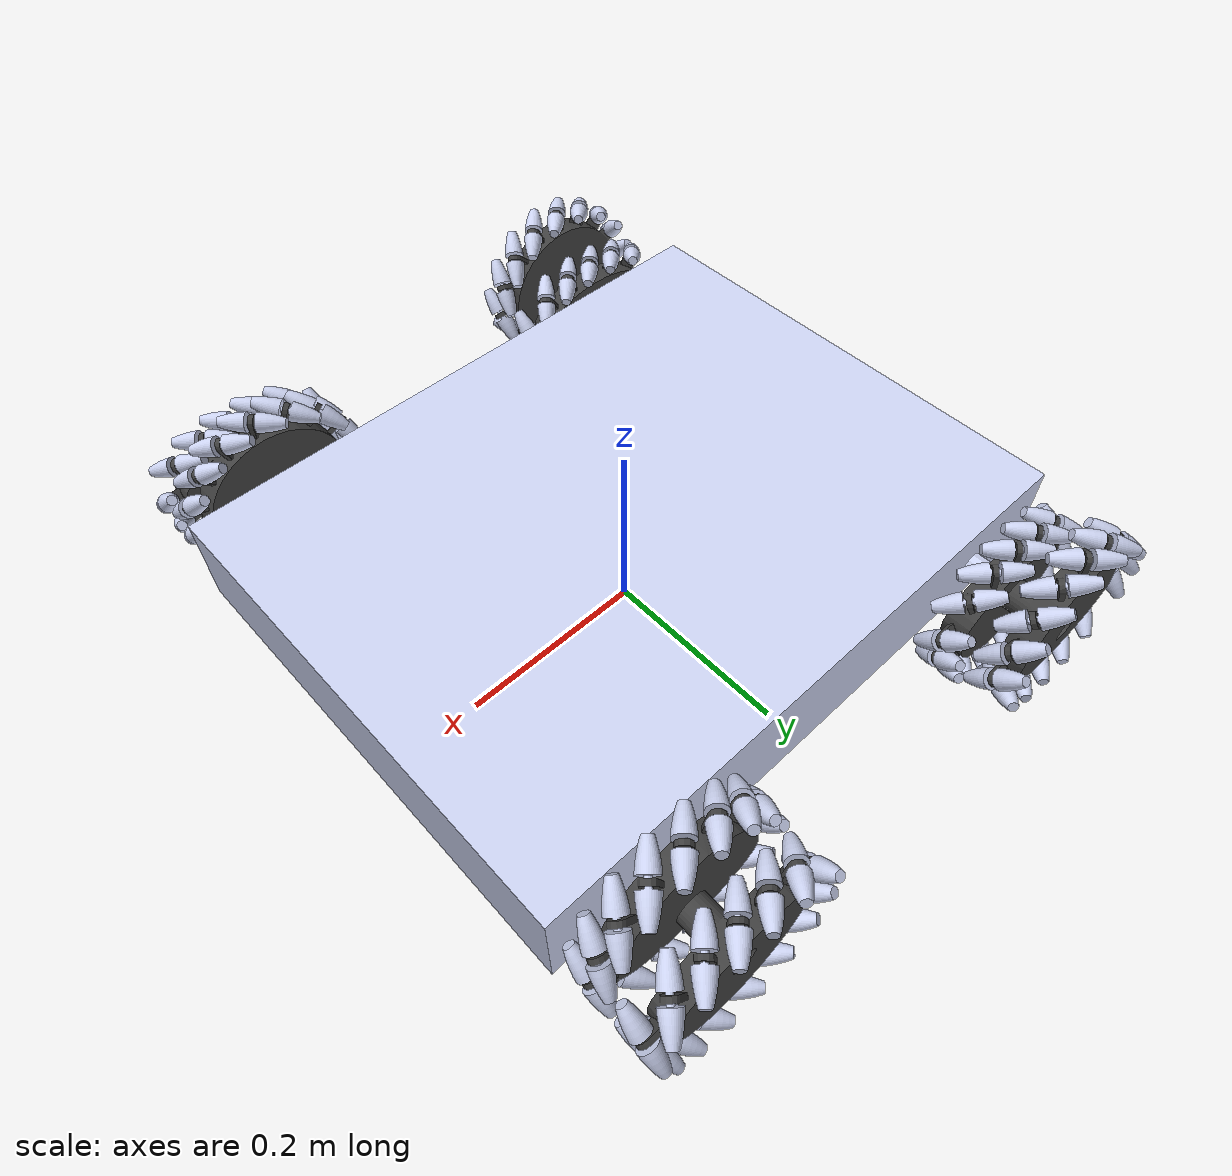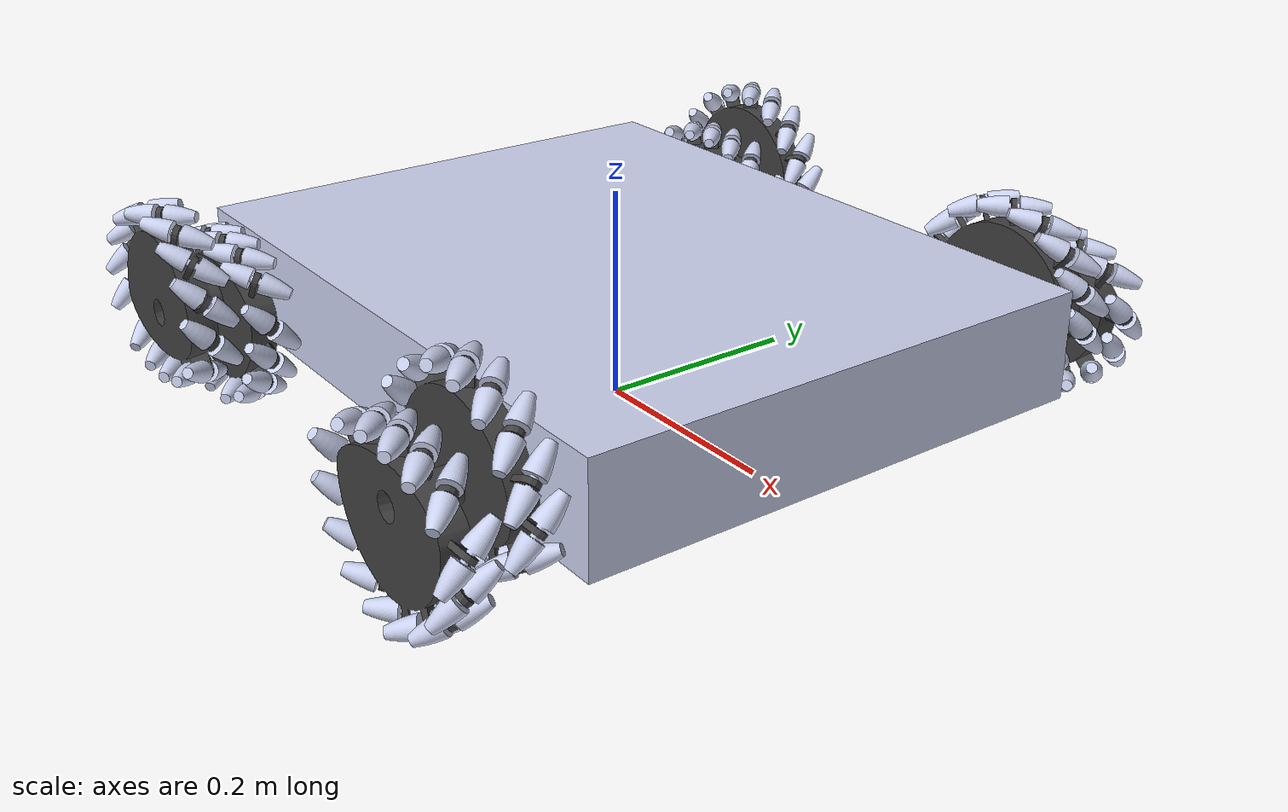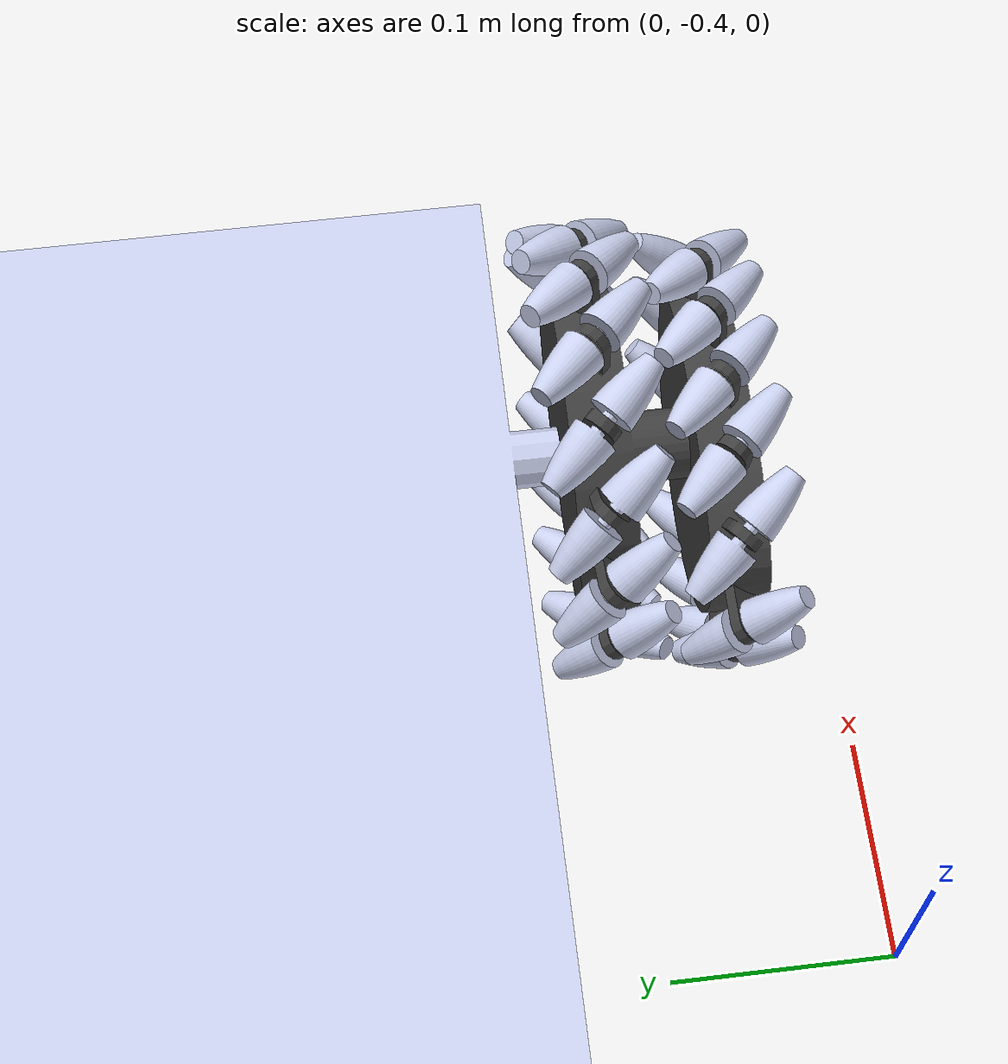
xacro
<?xml version="1.0"?>
<robot xmlns:xacro="http://ros.org/wiki/xacro" name="smdw_robot_base">

  <!-- Include the left and right SMDW wheel Xacro files -->
  <xacro:include filename="/home/imbatman/smdw_ws/src/left_smdw/urdf/left_smdw.urdf.xacro"/>
  <xacro:include filename="/home/imbatman/smdw_ws/src/right_smdw/urdf/right_smdw.urdf.xacro"/>

<!-- if you wannt to launch the robot then uncomment this following lines/ but if you launch agri_bot then dnt forget to comment this  -->

  <link name="odom">
  </link>

  <joint name="odom_to_base_footprint" type="fixed">
    <origin xyz="0 0 0" rpy="0 0 0"/>
    <parent link="odom"/>
    <child link="base_footprint"/>
  </joint>
  <!-- Fixed joint between base_footprint and base_link -->
  <joint name="base_fixed_joint" type="fixed">
    <origin xyz="0 0 0.0450" rpy="0 0 0"/>
    <parent link="base_footprint"/>
    <child link="base_link"/>
  </joint>
  <!-- Base footprint -->
  <link name="base_footprint"/>

  <!-- Base link -->
  <link name="base_link">
    <inertial>
      <origin xyz="5.48421351341662E-17 -4.87352495342906E-17 0.0508" rpy="0 0 0" />
      <mass value="25" />
      <inertia ixx="0.5656" ixy="0" ixz="0"
               iyy="0.8627" iyz="0" izz="1.3860" />
    </inertial>
    <visual>
      <origin xyz="0 0 0" rpy="0 0 0" />
      <geometry>
        <mesh filename="file:///home/imbatman/smdw_ws/src/smdw_robot_base/meshes/robot_base_link.STL" />
      </geometry>
      <material name="">
        <color rgba="0.792156862745098 0.819607843137255 0.933333333333333 1" />
      </material>
    </visual>
    <collision>
      <origin xyz="0 0 0" rpy="0 0 0" />
      <geometry>
        <mesh filename="file:///home/imbatman/smdw_ws/src/smdw_robot_base/meshes/robot_base_link.STL" />
      </geometry>
    </collision>
  </link>

  <!-- Instantiate the SMDW wheels at the correct positions -->
  <xacro:left_smdw_wheel prefix="front_left_" />
  <xacro:left_smdw_wheel prefix="rear_right_" />
  <xacro:right_smdw_wheel prefix="front_right_" />
  <xacro:right_smdw_wheel prefix="rear_left_" />

  <!-- Attach wheels to base_link -->
  <joint name="front_left_wheel_joint" type="continuous">
    <parent link="base_link" />
    <child link="front_left_base_link" />
    <origin xyz="0.2159 0.3175 0.0508" rpy="0 0 0" />
    <axis xyz="0 1 0" />
    <limit effort="100.0" velocity="10.0" />
    <dynamics friction="0.001" />
  </joint>

  <joint name="rear_left_wheel_joint" type="continuous">
    <parent link="base_link" />
    <child link="rear_left_base_link" />
    <origin xyz="-0.2159 0.3175 0.0508" rpy="0 0 0" />
    <axis xyz="0 1 0" />
    <limit effort="100.0" velocity="10.0" />
    <dynamics friction="0.001" />
  </joint>

  <joint name="front_right_wheel_joint" type="continuous">
    <parent link="base_link" />
    <child link="front_right_base_link" />
    <origin xyz="0.2159 -0.3175 0.0508" rpy="0 0 0" />
    <axis xyz="0 1 0" />
    <limit effort="100.0" velocity="10.0" />
    <dynamics friction="0.001" />
  </joint>

  <joint name="rear_right_wheel_joint" type="continuous">
    <parent link="base_link" />
    <child link="rear_right_base_link" />
    <origin xyz="-0.2159 -0.3175 0.0508" rpy="0 0 0" />
    <axis xyz="0 1 0" />
    <limit effort="100.0" velocity="10.0" />
    <dynamics friction="0.001" />
  </joint>

</robot>

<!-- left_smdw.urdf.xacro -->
<robot xmlns:xacro="http://ros.org/wiki/xacro" name="left_smdw_wheel">

  <!-- Define the left_smdw_wheel macro -->
  <xacro:macro name="left_smdw_wheel" params="prefix">
    <!-- Define properties -->
    <xacro:property name="mesh_path" value="file:///home/imbatman/smdw_ws/src/left_smdw/meshes/" />
    <xacro:property name="roller_mass" value="0.0343" />
    <xacro:property name="roller_ixx" value="0.00001147" />
    <xacro:property name="roller_iyy" value="0.000001312" />
    <xacro:property name="roller_izz" value="0.00001147" />

    <!-- Define materials -->
    <material name="${prefix}base_color">
      <color rgba="0.79216 0.81961 0.93333 1" />
    </material>
    <material name="${prefix}wheel_color">
      <color rgba="0.25098 0.25098 0.25098 1" />
    </material>

    <!-- Base link -->
    <link name="${prefix}base_link">
      <inertial>
        <origin xyz="-4.3311E-18 1.504E-12 1.7857E-18" rpy="0 0 0" />
        <mass value="1.9429" />
        <inertia ixx="0.0019245" ixy="8.1609E-21" ixz="-8.1689E-08" iyy="0.0049239" iyz="-7.5092E-20" izz="0.0032216" />
      </inertial>
      <visual>
        <origin xyz="0 0 0" rpy="0 0 0" />
        <geometry>
          <mesh filename="${mesh_path}front_left_wheel_base_link.STL" />
        </geometry>
        <material name="${prefix}wheel_color" />
      </visual>
      <collision>
        <origin xyz="0 0 0" rpy="0 0 0" />
        <geometry>
          <mesh filename="${mesh_path}front_left_wheel_base_link.STL" />
        </geometry>
      </collision>
    </link>

  <!-- Define the smdw_roller macro for individual rollers -->
  <xacro:macro name="smdw_roller" params="prefix type number mesh_path xyz rpy axis">
    <link name="${prefix}${type}_link_${number}">
      <inertial>
        <origin xyz="0 0 0" rpy="0 0 0" />
        <mass value="0.0343" />
        <inertia ixx="0.00001147" ixy="0" ixz="0" iyy="0.000001312" iyz="0" izz="0.00001147" />
      </inertial>
      <visual>
        <origin xyz="0 0 0" rpy="0 0 0" />
        <geometry>
          <mesh filename="${mesh_path}FL_${type}_link_${number}.STL" />
        </geometry>
        <material name="${prefix}base_color" />
      </visual>
      <collision>
        <origin xyz="0 0 0" rpy="0 0 0" />
        <geometry>
          <mesh filename="${mesh_path}FL_${type}_link_${number}.STL" />
        </geometry>
      </collision>
    </link>
    <joint name="${prefix}${type}_joint_${number}" type="continuous">
      <origin xyz="${xyz}" rpy="${rpy}" />
      <parent link="${prefix}base_link" />
      <child link="${prefix}${type}_link_${number}" />
      <axis xyz="${axis}" />
    </joint>

    <gazebo reference="${prefix}${type}_link_${number}">
      <material>Gazebo/DarkGrey</material>
      <surface>
        <friction>
          <ode>
            <mu1>1.0</mu1>
            <mu2>2.0</mu2>
            <fdir1>1 0 0</fdir1>
          </ode>
        </friction>
        <contact>
          <ode>
            <min_depth>0.001</min_depth>
            <max_vel>10.0</max_vel>
          </ode>
        </contact>
      </surface>
    </gazebo>
  </xacro:macro>

    <!-- Properties for RR rollers (FL_RR_link_1 to FL_RR_link_14) -->
    <xacro:property name="RR1_xyz" value="0.0000 -0.0279 0.0914" />
    <xacro:property name="RR1_rpy" value="0.0000 0.0000 -0.7854" />
    <xacro:property name="RR1_axis" value="0 -1 0" />
    <xacro:property name="RR2_xyz" value="0.0350 -0.0279 0.0845" />
    <xacro:property name="RR2_rpy" value="-0.2849 0.2740 -0.8249" />
    <xacro:property name="RR2_axis" value="0 -1 0" />
    <xacro:property name="RR3_xyz" value="0.0647 -0.0279 0.0647" />
    <xacro:property name="RR3_rpy" value="-0.6155 0.5236 -0.9553" />
    <xacro:property name="RR3_axis" value="0 -1 0" />
    <xacro:property name="RR4_xyz" value="0.0845 -0.0279 0.0350" />
    <xacro:property name="RR4_rpy" value="-1.0409 0.7119 -1.2053" />
    <xacro:property name="RR4_axis" value="0 -1 0" />
    <xacro:property name="RR5_xyz" value="0.0914 -0.0279 0.0000" />
    <xacro:property name="RR5_rpy" value="-1.5708 0.7854 -1.5708" />
    <xacro:property name="RR5_axis" value="0 -1 0" />
    <xacro:property name="RR6_xyz" value="0.0671 -0.0279 -0.0370" />
    <xacro:property name="RR6_rpy" value="-2.7309 0.3798 -2.2762" />
    <xacro:property name="RR6_axis" value="0 -1 0" />
    <xacro:property name="RR7_xyz" value="0.0320 -0.0261 -0.0502" />
    <xacro:property name="RR7_rpy" value="-2.9882 0.1516 -2.3445" />
    <xacro:property name="RR7_axis" value="0 -1 0" />
    <xacro:property name="RR8_xyz" value="0.0000 -0.0279 -0.0533" />
    <xacro:property name="RR8_rpy" value="-3.1416 0.0000 -2.3562" />
    <xacro:property name="RR8_axis" value="0 -1 0" />
    <xacro:property name="RR9_xyz" value="-0.0338 -0.0279 -0.0498" />
    <xacro:property name="RR9_rpy" value="2.9882 -0.1517 -2.3445" />
    <xacro:property name="RR9_axis" value="0 -1 0" />
    <xacro:property name="RR10_xyz" value="-0.0671 -0.0279 -0.0370" />
    <xacro:property name="RR10_rpy" value="2.7309 -0.3798 -2.2762" />
    <xacro:property name="RR10_axis" value="0 -1 0" />
    <xacro:property name="RR11_xyz" value="-0.0914 -0.0279 0.0000" />
    <xacro:property name="RR11_rpy" value="1.5708 -0.7854 -1.5708" />
    <xacro:property name="RR11_axis" value="0 -1 0" />
    <xacro:property name="RR12_xyz" value="-0.0845 -0.0279 0.0350" />
    <xacro:property name="RR12_rpy" value="1.0409 -0.7119 -1.2053" />
    <xacro:property name="RR12_axis" value="0 -1 0" />
    <xacro:property name="RR13_xyz" value="-0.0647 -0.0279 0.0647" />
    <xacro:property name="RR13_rpy" value="0.6155 -0.5236 -0.9553" />
    <xacro:property name="RR13_axis" value="0 -1 0" />
    <xacro:property name="RR14_xyz" value="-0.0350 -0.0279 0.0845" />
    <xacro:property name="RR14_rpy" value="0.2849 -0.2740 -0.8249" />
    <xacro:property name="RR14_axis" value="0 -1 0" />

    <!-- Properties for LR rollers (FL_LR_link_1 to FL_LR_link_14) -->
    <xacro:property name="LR1_xyz" value="0.0000 0.0279 0.0533" />
    <xacro:property name="LR1_rpy" value="0.0000 0.0000 -0.7854" />
    <xacro:property name="LR1_axis" value="0 -1 0" />
    <xacro:property name="LR2_xyz" value="0.0338 0.0279 0.0498" />
    <xacro:property name="LR2_rpy" value="-0.1534 0.1517 -0.7971" />
    <xacro:property name="LR2_axis" value="0 -1 0" />
    <xacro:property name="LR3_xyz" value="0.0671 0.0279 0.0370" />
    <xacro:property name="LR3_rpy" value="-0.4107 0.3798 -0.8654" />
    <xacro:property name="LR3_axis" value="0 -1 0" />
    <xacro:property name="LR4_xyz" value="0.0914 0.0279 0.0000" />
    <xacro:property name="LR4_rpy" value="-1.5708 0.7854 -1.5708" />
    <xacro:property name="LR4_axis" value="0 -1 0" />
    <xacro:property name="LR5_xyz" value="0.0845 0.0279 -0.0350" />
    <xacro:property name="LR5_rpy" value="-2.1007 0.7119 -1.9363" />
    <xacro:property name="LR5_axis" value="0 -1 0" />
    <xacro:property name="LR6_xyz" value="0.0647 0.0279 -0.0647" />
    <xacro:property name="LR6_rpy" value="-2.5261 0.5236 -2.1863" />
    <xacro:property name="LR6_axis" value="0 -1 0" />
    <xacro:property name="LR7_xyz" value="0.0350 0.0279 -0.0845" />
    <xacro:property name="LR7_rpy" value="-2.8567 0.2740 -2.3166" />
    <xacro:property name="LR7_axis" value="0 -1 0" />
    <xacro:property name="LR8_xyz" value="0.0000 0.0279 -0.0914" />
    <xacro:property name="LR8_rpy" value="3.1416 0.0000 -2.3562" />
    <xacro:property name="LR8_axis" value="0 -1 0" />
    <xacro:property name="LR9_xyz" value="-0.0350 0.0279 -0.0845" />
    <xacro:property name="LR9_rpy" value="2.8567 -0.2740 -2.3166" />
    <xacro:property name="LR9_axis" value="0 -1 0" />
    <xacro:property name="LR10_xyz" value="-0.0647 0.0279 -0.0647" />
    <xacro:property name="LR10_rpy" value="2.5261 -0.5236 -2.1863" />
    <xacro:property name="LR10_axis" value="0 -1 0" />
    <xacro:property name="LR11_xyz" value="-0.0845 0.0279 -0.0350" />
    <xacro:property name="LR11_rpy" value="2.1007 -0.7119 -1.9363" />
    <xacro:property name="LR11_axis" value="0 -1 0" />
    <xacro:property name="LR12_xyz" value="-0.0914 0.0279 0.0000" />
    <xacro:property name="LR12_rpy" value="1.5708 -0.7854 -1.5708" />
    <xacro:property name="LR12_axis" value="0 -1 0" />
    <xacro:property name="LR13_xyz" value="-0.0671 0.0279 0.0370" />
    <xacro:property name="LR13_rpy" value="0.4107 -0.3798 -0.8654" />
    <xacro:property name="LR13_axis" value="0 -1 0" />
    <xacro:property name="LR14_xyz" value="-0.0338 0.0279 0.0498" />
    <xacro:property name="LR14_rpy" value="0.1534 -0.1517 -0.7971" />
    <xacro:property name="LR14_axis" value="0 -1 0" />

    <!-- Instantiate RR rollers -->
    <xacro:smdw_roller prefix="${prefix}" type="RR" number="1" mesh_path="${mesh_path}" xyz="${RR1_xyz}" rpy="${RR1_rpy}" axis="${RR1_axis}" />
    <xacro:smdw_roller prefix="${prefix}" type="RR" number="2" mesh_path="${mesh_path}" xyz="${RR2_xyz}" rpy="${RR2_rpy}" axis="${RR2_axis}" />
    <xacro:smdw_roller prefix="${prefix}" type="RR" number="3" mesh_path="${mesh_path}" xyz="${RR3_xyz}" rpy="${RR3_rpy}" axis="${RR3_axis}" />
    <xacro:smdw_roller prefix="${prefix}" type="RR" number="4" mesh_path="${mesh_path}" xyz="${RR4_xyz}" rpy="${RR4_rpy}" axis="${RR4_axis}" />
    <xacro:smdw_roller prefix="${prefix}" type="RR" number="5" mesh_path="${mesh_path}" xyz="${RR5_xyz}" rpy="${RR5_rpy}" axis="${RR5_axis}" />
    <xacro:smdw_roller prefix="${prefix}" type="RR" number="6" mesh_path="${mesh_path}" xyz="${RR6_xyz}" rpy="${RR6_rpy}" axis="${RR6_axis}" />
    <xacro:smdw_roller prefix="${prefix}" type="RR" number="7" mesh_path="${mesh_path}" xyz="${RR7_xyz}" rpy="${RR7_rpy}" axis="${RR7_axis}" />
    <xacro:smdw_roller prefix="${prefix}" type="RR" number="8" mesh_path="${mesh_path}" xyz="${RR8_xyz}" rpy="${RR8_rpy}" axis="${RR8_axis}" />
    <xacro:smdw_roller prefix="${prefix}" type="RR" number="9" mesh_path="${mesh_path}" xyz="${RR9_xyz}" rpy="${RR9_rpy}" axis="${RR9_axis}" />
    <xacro:smdw_roller prefix="${prefix}" type="RR" number="10" mesh_path="${mesh_path}" xyz="${RR10_xyz}" rpy="${RR10_rpy}" axis="${RR10_axis}" />
    <xacro:smdw_roller prefix="${prefix}" type="RR" number="11" mesh_path="${mesh_path}" xyz="${RR11_xyz}" rpy="${RR11_rpy}" axis="${RR11_axis}" />
    <xacro:smdw_roller prefix="${prefix}" type="RR" number="12" mesh_path="${mesh_path}" xyz="${RR12_xyz}" rpy="${RR12_rpy}" axis="${RR12_axis}" />
    <xacro:smdw_roller prefix="${prefix}" type="RR" number="13" mesh_path="${mesh_path}" xyz="${RR13_xyz}" rpy="${RR13_rpy}" axis="${RR13_axis}" />
    <xacro:smdw_roller prefix="${prefix}" type="RR" number="14" mesh_path="${mesh_path}" xyz="${RR14_xyz}" rpy="${RR14_rpy}" axis="${RR14_axis}" />

    <!-- Instantiate LR rollers -->
    <xacro:smdw_roller prefix="${prefix}" type="LR" number="1" mesh_path="${mesh_path}" xyz="${LR1_xyz}" rpy="${LR1_rpy}" axis="${LR1_axis}" />
    <xacro:smdw_roller prefix="${prefix}" type="LR" number="2" mesh_path="${mesh_path}" xyz="${LR2_xyz}" rpy="${LR2_rpy}" axis="${LR2_axis}" />
    <xacro:smdw_roller prefix="${prefix}" type="LR" number="3" mesh_path="${mesh_path}" xyz="${LR3_xyz}" rpy="${LR3_rpy}" axis="${LR3_axis}" />
    <xacro:smdw_roller prefix="${prefix}" type="LR" number="4" mesh_path="${mesh_path}" xyz="${LR4_xyz}" rpy="${LR4_rpy}" axis="${LR4_axis}" />
    <xacro:smdw_roller prefix="${prefix}" type="LR" number="5" mesh_path="${mesh_path}" xyz="${LR5_xyz}" rpy="${LR5_rpy}" axis="${LR5_axis}" />
    <xacro:smdw_roller prefix="${prefix}" type="LR" number="6" mesh_path="${mesh_path}" xyz="${LR6_xyz}" rpy="${LR6_rpy}" axis="${LR6_axis}" />
    <xacro:smdw_roller prefix="${prefix}" type="LR" number="7" mesh_path="${mesh_path}" xyz="${LR7_xyz}" rpy="${LR7_rpy}" axis="${LR7_axis}" />
    <xacro:smdw_roller prefix="${prefix}" type="LR" number="8" mesh_path="${mesh_path}" xyz="${LR8_xyz}" rpy="${LR8_rpy}" axis="${LR8_axis}" />
    <xacro:smdw_roller prefix="${prefix}" type="LR" number="9" mesh_path="${mesh_path}" xyz="${LR9_xyz}" rpy="${LR9_rpy}" axis="${LR9_axis}" />
    <xacro:smdw_roller prefix="${prefix}" type="LR" number="10" mesh_path="${mesh_path}" xyz="${LR10_xyz}" rpy="${LR10_rpy}" axis="${LR10_axis}" />
    <xacro:smdw_roller prefix="${prefix}" type="LR" number="11" mesh_path="${mesh_path}" xyz="${LR11_xyz}" rpy="${LR11_rpy}" axis="${LR11_axis}" />
    <xacro:smdw_roller prefix="${prefix}" type="LR" number="12" mesh_path="${mesh_path}" xyz="${LR12_xyz}" rpy="${LR12_rpy}" axis="${LR12_axis}" />
    <xacro:smdw_roller prefix="${prefix}" type="LR" number="13" mesh_path="${mesh_path}" xyz="${LR13_xyz}" rpy="${LR13_rpy}" axis="${LR13_axis}" />
    <xacro:smdw_roller prefix="${prefix}" type="LR" number="14" mesh_path="${mesh_path}" xyz="${LR14_xyz}" rpy="${LR14_rpy}" axis="${LR14_axis}" />
  </xacro:macro>

</robot>

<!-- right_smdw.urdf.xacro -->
<robot xmlns:xacro="http://ros.org/wiki/xacro" name="right_smdw_wheel">

  <xacro:macro name="smdw_roller" params="prefix type number mesh_path xyz rpy axis">
    <link name="${prefix}${type}_link_${number}">
      <inertial>
        <origin xyz="0 0 0" rpy="0 0 0" />
        <mass value="0.0343" />
        <inertia ixx="0.00001147" ixy="0" ixz="0" iyy="0.000001312" iyz="0" izz="0.00001147" />
      </inertial>
      <visual>
        <origin xyz="0 0 0" rpy="0 0 0" />
        <geometry>
          <mesh filename="${mesh_path}FR_${type}_link_${number}.STL" />
        </geometry>
        <material name="${prefix}base_color" />
      </visual>
      <collision>
        <origin xyz="0 0 0" rpy="0 0 0" />
        <geometry>
          <mesh filename="${mesh_path}FR_${type}_link_${number}.STL" />
        </geometry>
      </collision>
    </link>
    <joint name="${prefix}${type}_joint_${number}" type="continuous">
      <origin xyz="${xyz}" rpy="${rpy}" />
      <parent link="${prefix}base_link" />
      <child link="${prefix}${type}_link_${number}" />
      <axis xyz="${axis}" />
    </joint>

    <gazebo reference="${prefix}${type}_link_${number}">
      <material>Gazebo/DarkGrey</material>
      <surface>
        <friction>
          <ode>
            <mu1>1.0</mu1>
            <mu2>2.0</mu2>
            <fdir1>1 0 0</fdir1>
          </ode>
        </friction>
        <contact>
          <ode>
            <min_depth>0.001</min_depth>
            <max_vel>10.0</max_vel>
          </ode>
        </contact>
      </surface>
    </gazebo>

  </xacro:macro>

  <!-- Define the right_smdw_wheel macro -->
  <xacro:macro name="right_smdw_wheel" params="prefix">
    <!-- Define properties -->
    <xacro:property name="mesh_path" value="file:///home/imbatman/smdw_ws/src/right_smdw/meshes/" />
    <xacro:property name="roller_mass" value="0.0343" />
    <xacro:property name="roller_ixx" value="0.00001147" />
    <xacro:property name="roller_iyy" value="0.000001312" />
    <xacro:property name="roller_izz" value="0.00001147" />

    <!-- Define materials -->
    <material name="${prefix}base_color">
      <color rgba="0.79216 0.81961 0.93333 1" />
    </material>
    <material name="${prefix}wheel_color">
      <color rgba="0.25098 0.25098 0.25098 1" />
    </material>

    <!-- Base link -->
    <link name="${prefix}base_link">
      <inertial>
        <origin xyz="-4.3311E-18 1.504E-12 1.7857E-18" rpy="0 0 0" />
        <mass value="1.9429" />
        <inertia ixx="0.0019245" ixy="8.1609E-21" ixz="-8.1689E-08" iyy="0.0049239" iyz="-7.5092E-20" izz="0.0032216" />
      </inertial>
      <visual>
        <origin xyz="0 0 0" rpy="0 0 0" />
        <geometry>
          <mesh filename="${mesh_path}front_right_wheel_base_link.STL" />
        </geometry>
        <material name="${prefix}wheel_color" />
      </visual>
      <collision>
        <origin xyz="0 0 0" rpy="0 0 0" />
        <geometry>
          <mesh filename="${mesh_path}front_right_wheel_base_link.STL" />
        </geometry>
      </collision>
    </link>

    <!-- Properties for RR rollers (FR_RR_link_1 to FR_RR_link_14) -->
    <xacro:property name="RR1_xyz" value="0.0000 -0.0279 0.0533" />
    <xacro:property name="RR1_rpy" value="0.0000 0.0000 0.7854" />
    <xacro:property name="RR1_axis" value="0 -1 0" />
    <xacro:property name="RR2_xyz" value="0.0338 -0.0279 0.0498" />
    <xacro:property name="RR2_rpy" value="0.1534 0.1516 0.7971" />
    <xacro:property name="RR2_axis" value="0 -1 0" />
    <xacro:property name="RR3_xyz" value="0.0671 -0.0279 0.0370" />
    <xacro:property name="RR3_rpy" value="0.4107 0.3798 0.8654" />
    <xacro:property name="RR3_axis" value="0 -1 0" />
    <xacro:property name="RR4_xyz" value="0.0914 -0.0279 0.0000" />
    <xacro:property name="RR4_rpy" value="1.5708 0.7854 1.5708" />
    <xacro:property name="RR4_axis" value="0 -1 0" />
    <xacro:property name="RR5_xyz" value="0.0845 -0.0279 -0.0350" />
    <xacro:property name="RR5_rpy" value="2.1007 0.7119 1.9363" />
    <xacro:property name="RR5_axis" value="0 -1 0" />
    <xacro:property name="RR6_xyz" value="0.0647 -0.0279 -0.0647" />
    <xacro:property name="RR6_rpy" value="2.5261 0.5236 2.1863" />
    <xacro:property name="RR6_axis" value="0 -1 0" />
    <xacro:property name="RR7_xyz" value="0.0350 -0.0279 -0.0845" />
    <xacro:property name="RR7_rpy" value="2.8567 0.2740 2.3166" />
    <xacro:property name="RR7_axis" value="0 -1 0" />
    <xacro:property name="RR8_xyz" value="0.0000 -0.0279 -0.0914" />
    <xacro:property name="RR8_rpy" value="3.1416 0.0000 2.3562" />
    <xacro:property name="RR8_axis" value="0 -1 0" />
    <xacro:property name="RR9_xyz" value="-0.0350 -0.0279 -0.0845" />
    <xacro:property name="RR9_rpy" value="-2.8567 -0.2740 2.3166" />
    <xacro:property name="RR9_axis" value="0 -1 0" />
    <xacro:property name="RR10_xyz" value="-0.0647 -0.0279 -0.0647" />
    <xacro:property name="RR10_rpy" value="-2.5261 -0.5236 2.1863" />
    <xacro:property name="RR10_axis" value="0 -1 0" />
    <xacro:property name="RR11_xyz" value="-0.0845 -0.0279 -0.0350" />
    <xacro:property name="RR11_rpy" value="-2.1007 -0.7119 1.9363" />
    <xacro:property name="RR11_axis" value="0 -1 0" />
    <xacro:property name="RR12_xyz" value="-0.0914 -0.0279 0.0000" />
    <xacro:property name="RR12_rpy" value="-1.5708 -0.7854 1.5708" />
    <xacro:property name="RR12_axis" value="0 -1 0" />
    <xacro:property name="RR13_xyz" value="-0.0671 -0.0279 0.0370" />
    <xacro:property name="RR13_rpy" value="-0.4107 -0.3798 0.8654" />
    <xacro:property name="RR13_axis" value="0 -1 0" />
    <xacro:property name="RR14_xyz" value="-0.0338 -0.0279 0.0498" />
    <xacro:property name="RR14_rpy" value="-0.1534 -0.1516 0.7971" />
    <xacro:property name="RR14_axis" value="0 -1 0" />

    <!-- Properties for LR rollers (FR_LR_link_1 to FR_LR_link_14) -->
    <xacro:property name="LR1_xyz" value="0.0000 0.0279 0.0914" />
    <xacro:property name="LR1_rpy" value="0.0000 0.0000 0.7854" />
    <xacro:property name="LR1_axis" value="0 -1 0" />
    <xacro:property name="LR2_xyz" value="0.0350 0.0279 0.0845" />
    <xacro:property name="LR2_rpy" value="0.2849 0.2740 0.8249" />
    <xacro:property name="LR2_axis" value="0 -1 0" />
    <xacro:property name="LR3_xyz" value="0.0647 0.0279 0.0647" />
    <xacro:property name="LR3_rpy" value="0.6155 0.5236 0.9553" />
    <xacro:property name="LR3_axis" value="0 -1 0" />
    <xacro:property name="LR4_xyz" value="0.0845 0.0279 0.0350" />
    <xacro:property name="LR4_rpy" value="1.0409 0.7119 1.2053" />
    <xacro:property name="LR4_axis" value="0 -1 0" />
    <xacro:property name="LR5_xyz" value="0.0914 0.0279 0.0000" />
    <xacro:property name="LR5_rpy" value="1.5708 0.7854 1.5708" />
    <xacro:property name="LR5_axis" value="0 -1 0" />
    <xacro:property name="LR6_xyz" value="0.0671 0.0279 -0.0370" />
    <xacro:property name="LR6_rpy" value="2.7309 0.3798 2.2762" />
    <xacro:property name="LR6_axis" value="0 -1 0" />
    <xacro:property name="LR7_xyz" value="0.0338 0.0279 -0.0498" />
    <xacro:property name="LR7_rpy" value="2.9882 0.1516 2.3445" />
    <xacro:property name="LR7_axis" value="0 -1 0" />
    <xacro:property name="LR8_xyz" value="0.0000 0.0279 -0.0533" />
    <xacro:property name="LR8_rpy" value="3.1416 0.0000 2.3562" />
    <xacro:property name="LR8_axis" value="0 -1 0" />
    <xacro:property name="LR9_xyz" value="-0.0338 0.0279 -0.0498" />
    <xacro:property name="LR9_rpy" value="-2.9882 -0.1516 2.3445" />
    <xacro:property name="LR9_axis" value="0 -1 0" />
    <xacro:property name="LR10_xyz" value="-0.0671 0.0279 -0.0370" />
    <xacro:property name="LR10_rpy" value="-2.7309 -0.3798 2.2762" />
    <xacro:property name="LR10_axis" value="0 -1 0" />
    <xacro:property name="LR11_xyz" value="-0.0914 0.0279 0.0000" />
    <xacro:property name="LR11_rpy" value="-1.5708 -0.7854 1.5708" />
    <xacro:property name="LR11_axis" value="0 -1 0" />
    <xacro:property name="LR12_xyz" value="-0.0845 0.0279 0.0350" />
    <xacro:property name="LR12_rpy" value="-1.0409 -0.7119 1.2053" />
    <xacro:property name="LR12_axis" value="0 -1 0" />
    <xacro:property name="LR13_xyz" value="-0.0647 0.0279 0.0647" />
    <xacro:property name="LR13_rpy" value="-0.6155 -0.5236 0.9553" />
    <xacro:property name="LR13_axis" value="0 -1 0" />
    <xacro:property name="LR14_xyz" value="-0.0350 0.0279 0.0845" />
    <xacro:property name="LR14_rpy" value="-0.2849 -0.2740 0.8249" />
    <xacro:property name="LR14_axis" value="0 -1 0" />

    <!-- Instantiate RR rollers -->
    <xacro:smdw_roller prefix="${prefix}" type="RR" number="1" mesh_path="${mesh_path}" xyz="${RR1_xyz}" rpy="${RR1_rpy}" axis="${RR1_axis}" />
    <xacro:smdw_roller prefix="${prefix}" type="RR" number="2" mesh_path="${mesh_path}" xyz="${RR2_xyz}" rpy="${RR2_rpy}" axis="${RR2_axis}" />
    <xacro:smdw_roller prefix="${prefix}" type="RR" number="3" mesh_path="${mesh_path}" xyz="${RR3_xyz}" rpy="${RR3_rpy}" axis="${RR3_axis}" />
    <xacro:smdw_roller prefix="${prefix}" type="RR" number="4" mesh_path="${mesh_path}" xyz="${RR4_xyz}" rpy="${RR4_rpy}" axis="${RR4_axis}" />
    <xacro:smdw_roller prefix="${prefix}" type="RR" number="5" mesh_path="${mesh_path}" xyz="${RR5_xyz}" rpy="${RR5_rpy}" axis="${RR5_axis}" />
    <xacro:smdw_roller prefix="${prefix}" type="RR" number="6" mesh_path="${mesh_path}" xyz="${RR6_xyz}" rpy="${RR6_rpy}" axis="${RR6_axis}" />
    <xacro:smdw_roller prefix="${prefix}" type="RR" number="7" mesh_path="${mesh_path}" xyz="${RR7_xyz}" rpy="${RR7_rpy}" axis="${RR7_axis}" />
    <xacro:smdw_roller prefix="${prefix}" type="RR" number="8" mesh_path="${mesh_path}" xyz="${RR8_xyz}" rpy="${RR8_rpy}" axis="${RR8_axis}" />
    <xacro:smdw_roller prefix="${prefix}" type="RR" number="9" mesh_path="${mesh_path}" xyz="${RR9_xyz}" rpy="${RR9_rpy}" axis="${RR9_axis}" />
    <xacro:smdw_roller prefix="${prefix}" type="RR" number="10" mesh_path="${mesh_path}" xyz="${RR10_xyz}" rpy="${RR10_rpy}" axis="${RR10_axis}" />
    <xacro:smdw_roller prefix="${prefix}" type="RR" number="11" mesh_path="${mesh_path}" xyz="${RR11_xyz}" rpy="${RR11_rpy}" axis="${RR11_axis}" />
    <xacro:smdw_roller prefix="${prefix}" type="RR" number="12" mesh_path="${mesh_path}" xyz="${RR12_xyz}" rpy="${RR12_rpy}" axis="${RR12_axis}" />
    <xacro:smdw_roller prefix="${prefix}" type="RR" number="13" mesh_path="${mesh_path}" xyz="${RR13_xyz}" rpy="${RR13_rpy}" axis="${RR13_axis}" />
    <xacro:smdw_roller prefix="${prefix}" type="RR" number="14" mesh_path="${mesh_path}" xyz="${RR14_xyz}" rpy="${RR14_rpy}" axis="${RR14_axis}" />

    <!-- Instantiate LR rollers -->
    <xacro:smdw_roller prefix="${prefix}" type="LR" number="1" mesh_path="${mesh_path}" xyz="${LR1_xyz}" rpy="${LR1_rpy}" axis="${LR1_axis}" />
    <xacro:smdw_roller prefix="${prefix}" type="LR" number="2" mesh_path="${mesh_path}" xyz="${LR2_xyz}" rpy="${LR2_rpy}" axis="${LR2_axis}" />
    <xacro:smdw_roller prefix="${prefix}" type="LR" number="3" mesh_path="${mesh_path}" xyz="${LR3_xyz}" rpy="${LR3_rpy}" axis="${LR3_axis}" />
    <xacro:smdw_roller prefix="${prefix}" type="LR" number="4" mesh_path="${mesh_path}" xyz="${LR4_xyz}" rpy="${LR4_rpy}" axis="${LR4_axis}" />
    <xacro:smdw_roller prefix="${prefix}" type="LR" number="5" mesh_path="${mesh_path}" xyz="${LR5_xyz}" rpy="${LR5_rpy}" axis="${LR5_axis}" />
    <xacro:smdw_roller prefix="${prefix}" type="LR" number="6" mesh_path="${mesh_path}" xyz="${LR6_xyz}" rpy="${LR6_rpy}" axis="${LR6_axis}" />
    <xacro:smdw_roller prefix="${prefix}" type="LR" number="7" mesh_path="${mesh_path}" xyz="${LR7_xyz}" rpy="${LR7_rpy}" axis="${LR7_axis}" />
    <xacro:smdw_roller prefix="${prefix}" type="LR" number="8" mesh_path="${mesh_path}" xyz="${LR8_xyz}" rpy="${LR8_rpy}" axis="${LR8_axis}" />
    <xacro:smdw_roller prefix="${prefix}" type="LR" number="9" mesh_path="${mesh_path}" xyz="${LR9_xyz}" rpy="${LR9_rpy}" axis="${LR9_axis}" />
    <xacro:smdw_roller prefix="${prefix}" type="LR" number="10" mesh_path="${mesh_path}" xyz="${LR10_xyz}" rpy="${LR10_rpy}" axis="${LR10_axis}" />
    <xacro:smdw_roller prefix="${prefix}" type="LR" number="11" mesh_path="${mesh_path}" xyz="${LR11_xyz}" rpy="${LR11_rpy}" axis="${LR11_axis}" />
    <xacro:smdw_roller prefix="${prefix}" type="LR" number="12" mesh_path="${mesh_path}" xyz="${LR12_xyz}" rpy="${LR12_rpy}" axis="${LR12_axis}" />
    <xacro:smdw_roller prefix="${prefix}" type="LR" number="13" mesh_path="${mesh_path}" xyz="${LR13_xyz}" rpy="${LR13_rpy}" axis="${LR13_axis}" />
    <xacro:smdw_roller prefix="${prefix}" type="LR" number="14" mesh_path="${mesh_path}" xyz="${LR14_xyz}" rpy="${LR14_rpy}" axis="${LR14_axis}" />
  </xacro:macro>

</robot>
